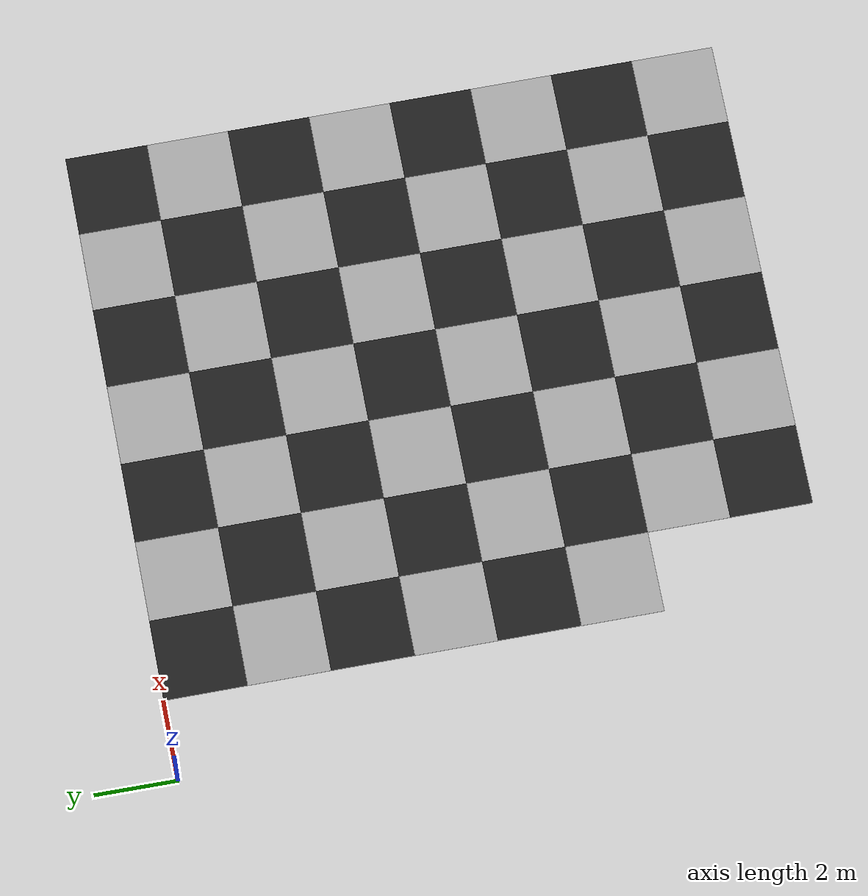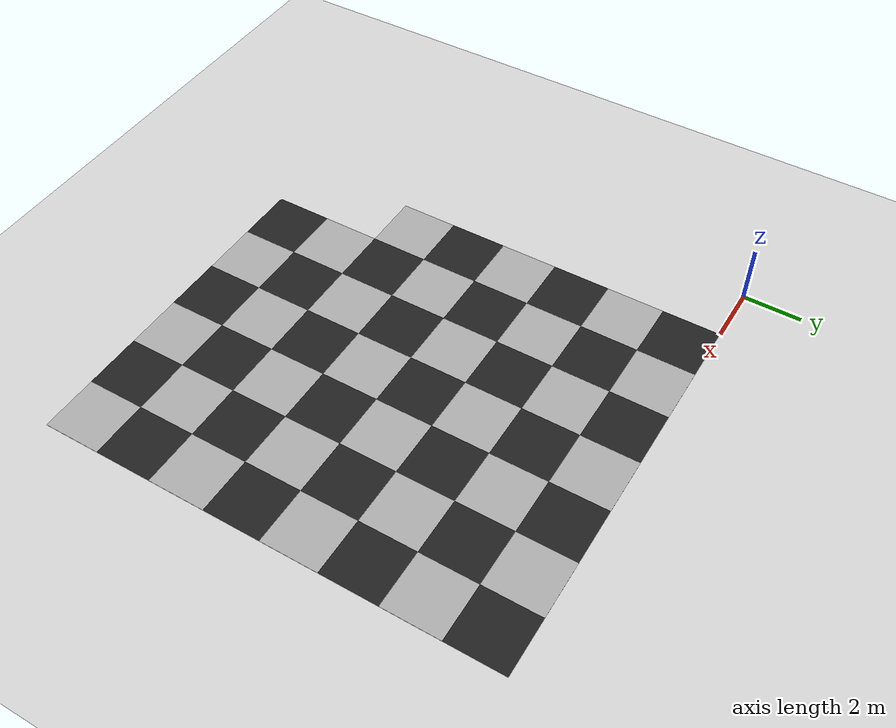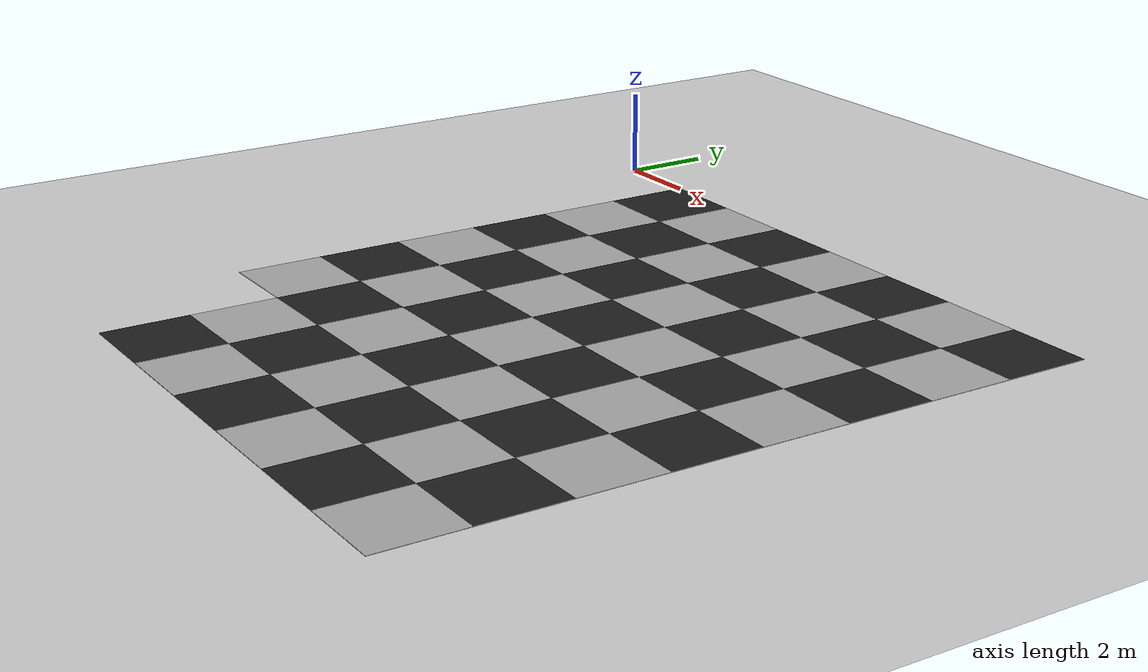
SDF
<sdf version="1.9">
 <world name="v6_optical_flow">
  <model name="ground_plane">
   <static>true</static>
   <link name="link">
    <collision name="collision">
     <geometry><plane><normal>0 0 1</normal><size>1 1</size></plane></geometry>
    </collision>
    <visual name="visual">
     <geometry><plane><normal>0 0 1</normal><size>500 500</size></plane></geometry>
     <material>
      <ambient>0.8 0.8 0.8 1</ambient>
      <diffuse>0.8 0.8 0.8 1</diffuse>
      <specular>0.1 0.1 0.1 1</specular>
     </material>
    </visual>
   </link>
  </model>
  <model name="optical_flow_floor">
   <static>true</static>
   <link name="tile_1_-6">
    <pose>3 -11 0.006 0 0 0</pose>
    <visual name="visual">
     <geometry><box><size>2 2 0.01</size></box></geometry>
     <material>
      <ambient>0.65 0.65 0.65 1</ambient>
      <diffuse>0.65 0.65 0.65 1</diffuse>
      <specular>0 0 0 1</specular>
     </material>
    </visual>
   </link>
   <link name="tile_1_-5">
    <pose>3 -9 0.006 0 0 0</pose>
    <visual name="visual">
     <geometry><box><size>2 2 0.01</size></box></geometry>
     <material>
      <ambient>0.12 0.12 0.12 1</ambient>
      <diffuse>0.12 0.12 0.12 1</diffuse>
      <specular>0 0 0 1</specular>
     </material>
    </visual>
   </link>
   <link name="tile_1_-4">
    <pose>3 -7 0.006 0 0 0</pose>
    <visual name="visual">
     <geometry><box><size>2 2 0.01</size></box></geometry>
     <material>
      <ambient>0.65 0.65 0.65 1</ambient>
      <diffuse>0.65 0.65 0.65 1</diffuse>
      <specular>0 0 0 1</specular>
     </material>
    </visual>
   </link>
   <link name="tile_1_-3">
    <pose>3 -5 0.006 0 0 0</pose>
    <visual name="visual">
     <geometry><box><size>2 2 0.01</size></box></geometry>
     <material>
      <ambient>0.12 0.12 0.12 1</ambient>
      <diffuse>0.12 0.12 0.12 1</diffuse>
      <specular>0 0 0 1</specular>
     </material>
    </visual>
   </link>
   <link name="tile_1_-2">
    <pose>3 -3 0.006 0 0 0</pose>
    <visual name="visual">
     <geometry><box><size>2 2 0.01</size></box></geometry>
     <material>
      <ambient>0.65 0.65 0.65 1</ambient>
      <diffuse>0.65 0.65 0.65 1</diffuse>
      <specular>0 0 0 1</specular>
     </material>
    </visual>
   </link>
   <link name="tile_1_-1">
    <pose>3 -1 0.006 0 0 0</pose>
    <visual name="visual">
     <geometry><box><size>2 2 0.01</size></box></geometry>
     <material>
      <ambient>0.12 0.12 0.12 1</ambient>
      <diffuse>0.12 0.12 0.12 1</diffuse>
      <specular>0 0 0 1</specular>
     </material>
    </visual>
   </link>
   <link name="tile_2_-8">
    <pose>5 -15 0.006 0 0 0</pose>
    <visual name="visual">
     <geometry><box><size>2 2 0.01</size></box></geometry>
     <material>
      <ambient>0.12 0.12 0.12 1</ambient>
      <diffuse>0.12 0.12 0.12 1</diffuse>
      <specular>0 0 0 1</specular>
     </material>
    </visual>
   </link>
   <link name="tile_2_-7">
    <pose>5 -13 0.006 0 0 0</pose>
    <visual name="visual">
     <geometry><box><size>2 2 0.01</size></box></geometry>
     <material>
      <ambient>0.65 0.65 0.65 1</ambient>
      <diffuse>0.65 0.65 0.65 1</diffuse>
      <specular>0 0 0 1</specular>
     </material>
    </visual>
   </link>
   <link name="tile_2_-6">
    <pose>5 -11 0.006 0 0 0</pose>
    <visual name="visual">
     <geometry><box><size>2 2 0.01</size></box></geometry>
     <material>
      <ambient>0.12 0.12 0.12 1</ambient>
      <diffuse>0.12 0.12 0.12 1</diffuse>
      <specular>0 0 0 1</specular>
     </material>
    </visual>
   </link>
   <link name="tile_2_-5">
    <pose>5 -9 0.006 0 0 0</pose>
    <visual name="visual">
     <geometry><box><size>2 2 0.01</size></box></geometry>
     <material>
      <ambient>0.65 0.65 0.65 1</ambient>
      <diffuse>0.65 0.65 0.65 1</diffuse>
      <specular>0 0 0 1</specular>
     </material>
    </visual>
   </link>
   <link name="tile_2_-4">
    <pose>5 -7 0.006 0 0 0</pose>
    <visual name="visual">
     <geometry><box><size>2 2 0.01</size></box></geometry>
     <material>
      <ambient>0.12 0.12 0.12 1</ambient>
      <diffuse>0.12 0.12 0.12 1</diffuse>
      <specular>0 0 0 1</specular>
     </material>
    </visual>
   </link>
   <link name="tile_2_-3">
    <pose>5 -5 0.006 0 0 0</pose>
    <visual name="visual">
     <geometry><box><size>2 2 0.01</size></box></geometry>
     <material>
      <ambient>0.65 0.65 0.65 1</ambient>
      <diffuse>0.65 0.65 0.65 1</diffuse>
      <specular>0 0 0 1</specular>
     </material>
    </visual>
   </link>
   <link name="tile_2_-2">
    <pose>5 -3 0.006 0 0 0</pose>
    <visual name="visual">
     <geometry><box><size>2 2 0.01</size></box></geometry>
     <material>
      <ambient>0.12 0.12 0.12 1</ambient>
      <diffuse>0.12 0.12 0.12 1</diffuse>
      <specular>0 0 0 1</specular>
     </material>
    </visual>
   </link>
   <link name="tile_2_-1">
    <pose>5 -1 0.006 0 0 0</pose>
    <visual name="visual">
     <geometry><box><size>2 2 0.01</size></box></geometry>
     <material>
      <ambient>0.65 0.65 0.65 1</ambient>
      <diffuse>0.65 0.65 0.65 1</diffuse>
      <specular>0 0 0 1</specular>
     </material>
    </visual>
   </link>
   <link name="tile_3_-8">
    <pose>7 -15 0.006 0 0 0</pose>
    <visual name="visual">
     <geometry><box><size>2 2 0.01</size></box></geometry>
     <material>
      <ambient>0.65 0.65 0.65 1</ambient>
      <diffuse>0.65 0.65 0.65 1</diffuse>
      <specular>0 0 0 1</specular>
     </material>
    </visual>
   </link>
   <link name="tile_3_-7">
    <pose>7 -13 0.006 0 0 0</pose>
    <visual name="visual">
     <geometry><box><size>2 2 0.01</size></box></geometry>
     <material>
      <ambient>0.12 0.12 0.12 1</ambient>
      <diffuse>0.12 0.12 0.12 1</diffuse>
      <specular>0 0 0 1</specular>
     </material>
    </visual>
   </link>
   <link name="tile_3_-6">
    <pose>7 -11 0.006 0 0 0</pose>
    <visual name="visual">
     <geometry><box><size>2 2 0.01</size></box></geometry>
     <material>
      <ambient>0.65 0.65 0.65 1</ambient>
      <diffuse>0.65 0.65 0.65 1</diffuse>
      <specular>0 0 0 1</specular>
     </material>
    </visual>
   </link>
   <link name="tile_3_-5">
    <pose>7 -9 0.006 0 0 0</pose>
    <visual name="visual">
     <geometry><box><size>2 2 0.01</size></box></geometry>
     <material>
      <ambient>0.12 0.12 0.12 1</ambient>
      <diffuse>0.12 0.12 0.12 1</diffuse>
      <specular>0 0 0 1</specular>
     </material>
    </visual>
   </link>
   <link name="tile_3_-4">
    <pose>7 -7 0.006 0 0 0</pose>
    <visual name="visual">
     <geometry><box><size>2 2 0.01</size></box></geometry>
     <material>
      <ambient>0.65 0.65 0.65 1</ambient>
      <diffuse>0.65 0.65 0.65 1</diffuse>
      <specular>0 0 0 1</specular>
     </material>
    </visual>
   </link>
   <link name="tile_3_-3">
    <pose>7 -5 0.006 0 0 0</pose>
    <visual name="visual">
     <geometry><box><size>2 2 0.01</size></box></geometry>
     <material>
      <ambient>0.12 0.12 0.12 1</ambient>
      <diffuse>0.12 0.12 0.12 1</diffuse>
      <specular>0 0 0 1</specular>
     </material>
    </visual>
   </link>
   <link name="tile_3_-2">
    <pose>7 -3 0.006 0 0 0</pose>
    <visual name="visual">
     <geometry><box><size>2 2 0.01</size></box></geometry>
     <material>
      <ambient>0.65 0.65 0.65 1</ambient>
      <diffuse>0.65 0.65 0.65 1</diffuse>
      <specular>0 0 0 1</specular>
     </material>
    </visual>
   </link>
   <link name="tile_3_-1">
    <pose>7 -1 0.006 0 0 0</pose>
    <visual name="visual">
     <geometry><box><size>2 2 0.01</size></box></geometry>
     <material>
      <ambient>0.12 0.12 0.12 1</ambient>
      <diffuse>0.12 0.12 0.12 1</diffuse>
      <specular>0 0 0 1</specular>
     </material>
    </visual>
   </link>
   <link name="tile_4_-8">
    <pose>9 -15 0.006 0 0 0</pose>
    <visual name="visual">
     <geometry><box><size>2 2 0.01</size></box></geometry>
     <material>
      <ambient>0.12 0.12 0.12 1</ambient>
      <diffuse>0.12 0.12 0.12 1</diffuse>
      <specular>0 0 0 1</specular>
     </material>
    </visual>
   </link>
   <link name="tile_4_-7">
    <pose>9 -13 0.006 0 0 0</pose>
    <visual name="visual">
     <geometry><box><size>2 2 0.01</size></box></geometry>
     <material>
      <ambient>0.65 0.65 0.65 1</ambient>
      <diffuse>0.65 0.65 0.65 1</diffuse>
      <specular>0 0 0 1</specular>
     </material>
    </visual>
   </link>
   <link name="tile_4_-6">
    <pose>9 -11 0.006 0 0 0</pose>
    <visual name="visual">
     <geometry><box><size>2 2 0.01</size></box></geometry>
     <material>
      <ambient>0.12 0.12 0.12 1</ambient>
      <diffuse>0.12 0.12 0.12 1</diffuse>
      <specular>0 0 0 1</specular>
     </material>
    </visual>
   </link>
   <link name="tile_4_-5">
    <pose>9 -9 0.006 0 0 0</pose>
    <visual name="visual">
     <geometry><box><size>2 2 0.01</size></box></geometry>
     <material>
      <ambient>0.65 0.65 0.65 1</ambient>
      <diffuse>0.65 0.65 0.65 1</diffuse>
      <specular>0 0 0 1</specular>
     </material>
    </visual>
   </link>
   <link name="tile_4_-4">
    <pose>9 -7 0.006 0 0 0</pose>
    <visual name="visual">
     <geometry><box><size>2 2 0.01</size></box></geometry>
     <material>
      <ambient>0.12 0.12 0.12 1</ambient>
      <diffuse>0.12 0.12 0.12 1</diffuse>
      <specular>0 0 0 1</specular>
     </material>
    </visual>
   </link>
   <link name="tile_4_-3">
    <pose>9 -5 0.006 0 0 0</pose>
    <visual name="visual">
     <geometry><box><size>2 2 0.01</size></box></geometry>
     <material>
      <ambient>0.65 0.65 0.65 1</ambient>
      <diffuse>0.65 0.65 0.65 1</diffuse>
      <specular>0 0 0 1</specular>
     </material>
    </visual>
   </link>
   <link name="tile_4_-2">
    <pose>9 -3 0.006 0 0 0</pose>
    <visual name="visual">
     <geometry><box><size>2 2 0.01</size></box></geometry>
     <material>
      <ambient>0.12 0.12 0.12 1</ambient>
      <diffuse>0.12 0.12 0.12 1</diffuse>
      <specular>0 0 0 1</specular>
     </material>
    </visual>
   </link>
   <link name="tile_4_-1">
    <pose>9 -1 0.006 0 0 0</pose>
    <visual name="visual">
     <geometry><box><size>2 2 0.01</size></box></geometry>
     <material>
      <ambient>0.65 0.65 0.65 1</ambient>
      <diffuse>0.65 0.65 0.65 1</diffuse>
      <specular>0 0 0 1</specular>
     </material>
    </visual>
   </link>
   <link name="tile_5_-8">
    <pose>11 -15 0.006 0 0 0</pose>
    <visual name="visual">
     <geometry><box><size>2 2 0.01</size></box></geometry>
     <material>
      <ambient>0.65 0.65 0.65 1</ambient>
      <diffuse>0.65 0.65 0.65 1</diffuse>
      <specular>0 0 0 1</specular>
     </material>
    </visual>
   </link>
   <link name="tile_5_-7">
    <pose>11 -13 0.006 0 0 0</pose>
    <visual name="visual">
     <geometry><box><size>2 2 0.01</size></box></geometry>
     <material>
      <ambient>0.12 0.12 0.12 1</ambient>
      <diffuse>0.12 0.12 0.12 1</diffuse>
      <specular>0 0 0 1</specular>
     </material>
    </visual>
   </link>
   <link name="tile_5_-6">
    <pose>11 -11 0.006 0 0 0</pose>
    <visual name="visual">
     <geometry><box><size>2 2 0.01</size></box></geometry>
     <material>
      <ambient>0.65 0.65 0.65 1</ambient>
      <diffuse>0.65 0.65 0.65 1</diffuse>
      <specular>0 0 0 1</specular>
     </material>
    </visual>
   </link>
   <link name="tile_5_-5">
    <pose>11 -9 0.006 0 0 0</pose>
    <visual name="visual">
     <geometry><box><size>2 2 0.01</size></box></geometry>
     <material>
      <ambient>0.12 0.12 0.12 1</ambient>
      <diffuse>0.12 0.12 0.12 1</diffuse>
      <specular>0 0 0 1</specular>
     </material>
    </visual>
   </link>
   <link name="tile_5_-4">
    <pose>11 -7 0.006 0 0 0</pose>
    <visual name="visual">
     <geometry><box><size>2 2 0.01</size></box></geometry>
     <material>
      <ambient>0.65 0.65 0.65 1</ambient>
      <diffuse>0.65 0.65 0.65 1</diffuse>
      <specular>0 0 0 1</specular>
     </material>
    </visual>
   </link>
   <link name="tile_5_-3">
    <pose>11 -5 0.006 0 0 0</pose>
    <visual name="visual">
     <geometry><box><size>2 2 0.01</size></box></geometry>
     <material>
      <ambient>0.12 0.12 0.12 1</ambient>
      <diffuse>0.12 0.12 0.12 1</diffuse>
      <specular>0 0 0 1</specular>
     </material>
    </visual>
   </link>
   <link name="tile_5_-2">
    <pose>11 -3 0.006 0 0 0</pose>
    <visual name="visual">
     <geometry><box><size>2 2 0.01</size></box></geometry>
     <material>
      <ambient>0.65 0.65 0.65 1</ambient>
      <diffuse>0.65 0.65 0.65 1</diffuse>
      <specular>0 0 0 1</specular>
     </material>
    </visual>
   </link>
   <link name="tile_5_-1">
    <pose>11 -1 0.006 0 0 0</pose>
    <visual name="visual">
     <geometry><box><size>2 2 0.01</size></box></geometry>
     <material>
      <ambient>0.12 0.12 0.12 1</ambient>
      <diffuse>0.12 0.12 0.12 1</diffuse>
      <specular>0 0 0 1</specular>
     </material>
    </visual>
   </link>
   <link name="tile_6_-8">
    <pose>13 -15 0.006 0 0 0</pose>
    <visual name="visual">
     <geometry><box><size>2 2 0.01</size></box></geometry>
     <material>
      <ambient>0.12 0.12 0.12 1</ambient>
      <diffuse>0.12 0.12 0.12 1</diffuse>
      <specular>0 0 0 1</specular>
     </material>
    </visual>
   </link>
   <link name="tile_6_-7">
    <pose>13 -13 0.006 0 0 0</pose>
    <visual name="visual">
     <geometry><box><size>2 2 0.01</size></box></geometry>
     <material>
      <ambient>0.65 0.65 0.65 1</ambient>
      <diffuse>0.65 0.65 0.65 1</diffuse>
      <specular>0 0 0 1</specular>
     </material>
    </visual>
   </link>
   <link name="tile_6_-6">
    <pose>13 -11 0.006 0 0 0</pose>
    <visual name="visual">
     <geometry><box><size>2 2 0.01</size></box></geometry>
     <material>
      <ambient>0.12 0.12 0.12 1</ambient>
      <diffuse>0.12 0.12 0.12 1</diffuse>
      <specular>0 0 0 1</specular>
     </material>
    </visual>
   </link>
   <link name="tile_6_-5">
    <pose>13 -9 0.006 0 0 0</pose>
    <visual name="visual">
     <geometry><box><size>2 2 0.01</size></box></geometry>
     <material>
      <ambient>0.65 0.65 0.65 1</ambient>
      <diffuse>0.65 0.65 0.65 1</diffuse>
      <specular>0 0 0 1</specular>
     </material>
    </visual>
   </link>
   <link name="tile_6_-4">
    <pose>13 -7 0.006 0 0 0</pose>
    <visual name="visual">
     <geometry><box><size>2 2 0.01</size></box></geometry>
     <material>
      <ambient>0.12 0.12 0.12 1</ambient>
      <diffuse>0.12 0.12 0.12 1</diffuse>
      <specular>0 0 0 1</specular>
     </material>
    </visual>
   </link>
   <link name="tile_6_-3">
    <pose>13 -5 0.006 0 0 0</pose>
    <visual name="visual">
     <geometry><box><size>2 2 0.01</size></box></geometry>
     <material>
      <ambient>0.65 0.65 0.65 1</ambient>
      <diffuse>0.65 0.65 0.65 1</diffuse>
      <specular>0 0 0 1</specular>
     </material>
    </visual>
   </link>
   <link name="tile_6_-2">
    <pose>13 -3 0.006 0 0 0</pose>
    <visual name="visual">
     <geometry><box><size>2 2 0.01</size></box></geometry>
     <material>
      <ambient>0.12 0.12 0.12 1</ambient>
      <diffuse>0.12 0.12 0.12 1</diffuse>
      <specular>0 0 0 1</specular>
     </material>
    </visual>
   </link>
   <link name="tile_6_-1">
    <pose>13 -1 0.006 0 0 0</pose>
    <visual name="visual">
     <geometry><box><size>2 2 0.01</size></box></geometry>
     <material>
      <ambient>0.65 0.65 0.65 1</ambient>
      <diffuse>0.65 0.65 0.65 1</diffuse>
      <specular>0 0 0 1</specular>
     </material>
    </visual>
   </link>
   <link name="tile_7_-8">
    <pose>15 -15 0.006 0 0 0</pose>
    <visual name="visual">
     <geometry><box><size>2 2 0.01</size></box></geometry>
     <material>
      <ambient>0.65 0.65 0.65 1</ambient>
      <diffuse>0.65 0.65 0.65 1</diffuse>
      <specular>0 0 0 1</specular>
     </material>
    </visual>
   </link>
   <link name="tile_7_-7">
    <pose>15 -13 0.006 0 0 0</pose>
    <visual name="visual">
     <geometry><box><size>2 2 0.01</size></box></geometry>
     <material>
      <ambient>0.12 0.12 0.12 1</ambient>
      <diffuse>0.12 0.12 0.12 1</diffuse>
      <specular>0 0 0 1</specular>
     </material>
    </visual>
   </link>
   <link name="tile_7_-6">
    <pose>15 -11 0.006 0 0 0</pose>
    <visual name="visual">
     <geometry><box><size>2 2 0.01</size></box></geometry>
     <material>
      <ambient>0.65 0.65 0.65 1</ambient>
      <diffuse>0.65 0.65 0.65 1</diffuse>
      <specular>0 0 0 1</specular>
     </material>
    </visual>
   </link>
   <link name="tile_7_-5">
    <pose>15 -9 0.006 0 0 0</pose>
    <visual name="visual">
     <geometry><box><size>2 2 0.01</size></box></geometry>
     <material>
      <ambient>0.12 0.12 0.12 1</ambient>
      <diffuse>0.12 0.12 0.12 1</diffuse>
      <specular>0 0 0 1</specular>
     </material>
    </visual>
   </link>
   <link name="tile_7_-4">
    <pose>15 -7 0.006 0 0 0</pose>
    <visual name="visual">
     <geometry><box><size>2 2 0.01</size></box></geometry>
     <material>
      <ambient>0.65 0.65 0.65 1</ambient>
      <diffuse>0.65 0.65 0.65 1</diffuse>
      <specular>0 0 0 1</specular>
     </material>
    </visual>
   </link>
   <link name="tile_7_-3">
    <pose>15 -5 0.006 0 0 0</pose>
    <visual name="visual">
     <geometry><box><size>2 2 0.01</size></box></geometry>
     <material>
      <ambient>0.12 0.12 0.12 1</ambient>
      <diffuse>0.12 0.12 0.12 1</diffuse>
      <specular>0 0 0 1</specular>
     </material>
    </visual>
   </link>
   <link name="tile_7_-2">
    <pose>15 -3 0.006 0 0 0</pose>
    <visual name="visual">
     <geometry><box><size>2 2 0.01</size></box></geometry>
     <material>
      <ambient>0.65 0.65 0.65 1</ambient>
      <diffuse>0.65 0.65 0.65 1</diffuse>
      <specular>0 0 0 1</specular>
     </material>
    </visual>
   </link>
   <link name="tile_7_-1">
    <pose>15 -1 0.006 0 0 0</pose>
    <visual name="visual">
     <geometry><box><size>2 2 0.01</size></box></geometry>
     <material>
      <ambient>0.12 0.12 0.12 1</ambient>
      <diffuse>0.12 0.12 0.12 1</diffuse>
      <specular>0 0 0 1</specular>
     </material>
    </visual>
   </link>
  </model>
 </world>
</sdf>
